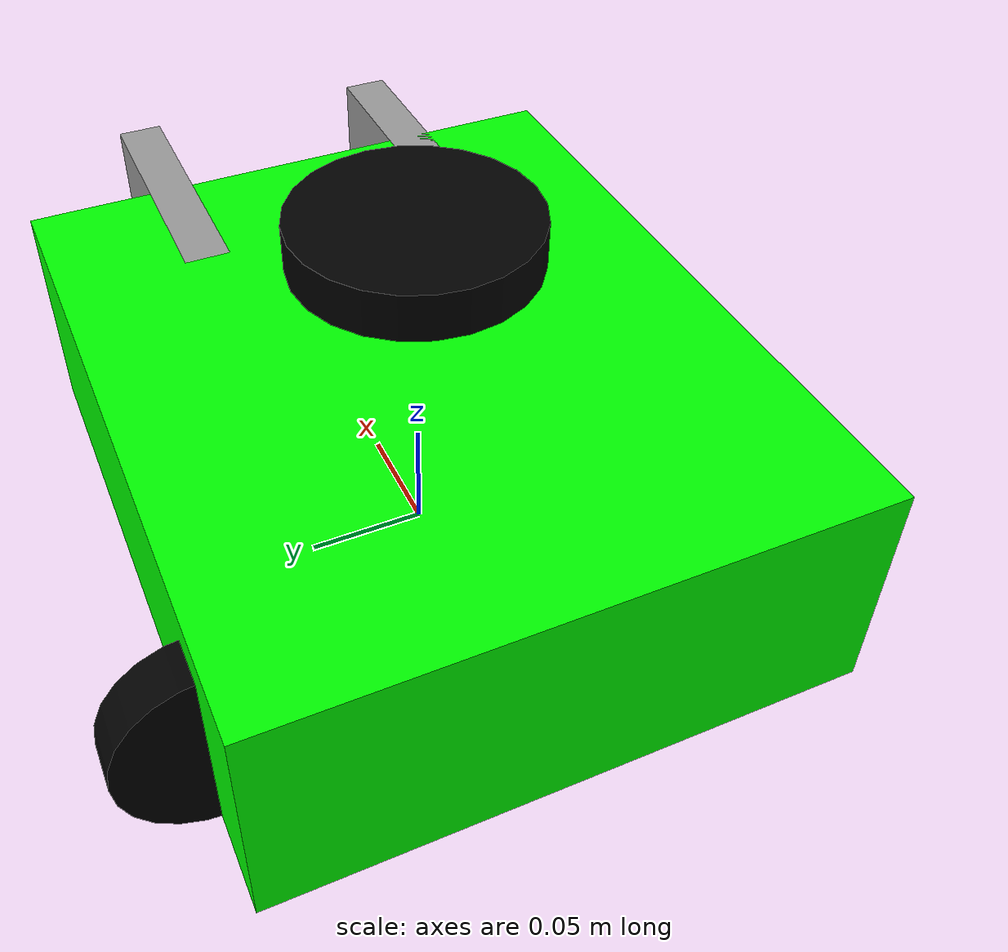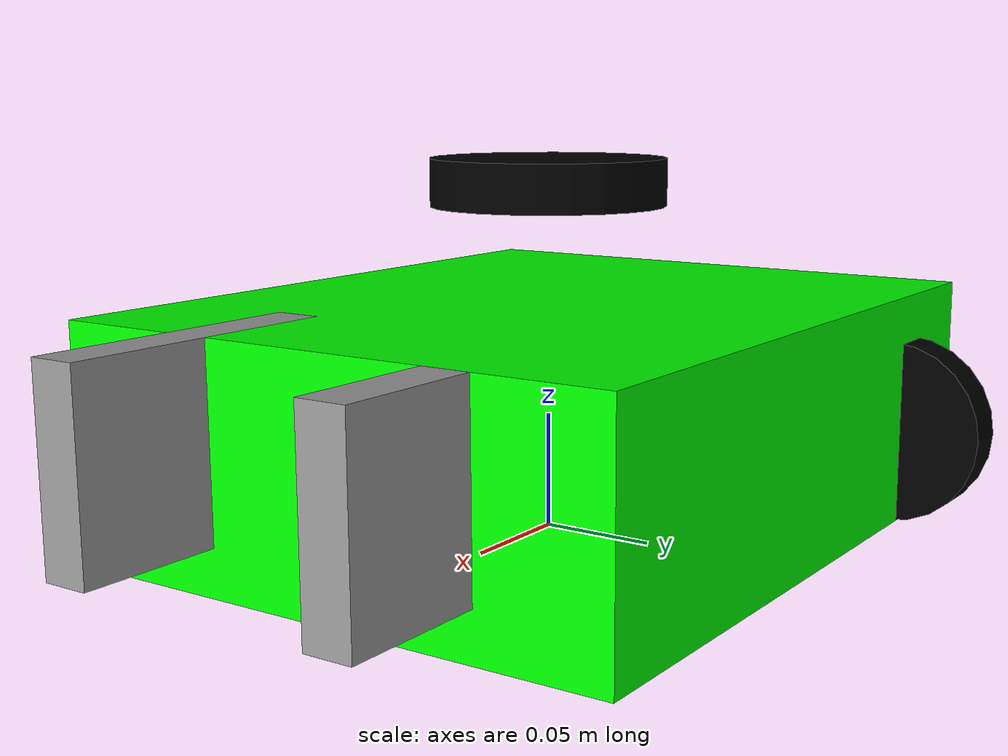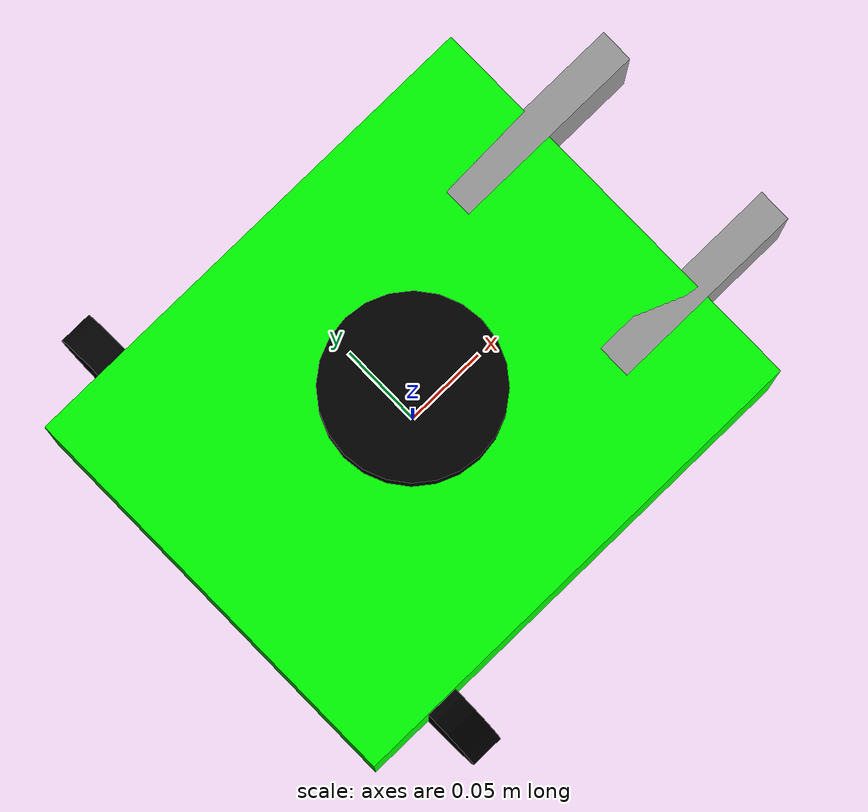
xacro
<?xml version="1.0"?>
<robot name="ball_bot" xmlns:xacro="http://www.ros.org/wiki/xacro">

  <!-- PARAMETERS -->
  <xacro:property name="base_length" value="0.30"/>
  <xacro:property name="base_width"  value="0.25"/>
  <xacro:property name="base_height" value="0.10"/>

  <xacro:property name="wheel_radius" value="0.04"/>
  <xacro:property name="wheel_width"  value="0.02"/>

  <xacro:property name="caster_radius" value="0.025"/>

  <xacro:property name="finger_length" value="0.12"/>
  <xacro:property name="finger_width"  value="0.02"/>
  <xacro:property name="finger_height" value="0.08"/>

  <xacro:property name="lidar_radius" value="0.05"/>
  <xacro:property name="lidar_height" value="0.02"/>

  <!-- Colors -->
  <material name="green"><color rgba="0 1 0 1"/></material>
  <material name="black"><color rgba="0 0 0 1"/></material>
  <material name="grey"><color rgba="0.6 0.6 0.6 1"/></material>

  <!-- BASE LINK -->
  <link name="base_link">
    <visual>
      <origin xyz="0 0 ${base_height/2}"/>
      <geometry>
        <box size="${base_length} ${base_width} ${base_height}"/>
      </geometry>
      <material name="green"/>
    </visual>

    <collision>
      <origin xyz="0 0 ${base_height/2}"/>
      <geometry>
        <box size="${base_length} ${base_width} ${base_height}"/>
      </geometry>
    </collision>

    <inertial>
      <mass value="1.0"/>
      <origin xyz="0 0 ${base_height/2}"/>
      <inertia ixx="0.02" ixy="0" ixz="0"
               iyy="0.02" iyz="0" izz="0.02"/>
    </inertial>
  </link>

  <!-- WHEEL MACRO -->
  <xacro:macro name="wheel" params="name x y">
    <link name="${name}">
      <visual>
        <origin rpy="0 1.5708 0"/>
        <geometry>
          <cylinder radius="${wheel_radius}" length="${wheel_width}"/>
        </geometry>
        <material name="black"/>
      </visual>

      <collision>
        <origin rpy="0 1.5708 0"/>
        <geometry>
          <cylinder radius="${wheel_radius}" length="${wheel_width}"/>
        </geometry>
      </collision>

      <inertial>
        <mass value="0.1"/>
        <origin xyz="0 0 0"/>
        <inertia ixx="0.0001" ixy="0" ixz="0"
                 iyy="0.0001" iyz="0" izz="0.0001"/>
      </inertial>
    </link>

    <joint name="${name}_joint" type="continuous">
      <parent link="base_link"/>
      <child link="${name}"/>
      <origin xyz="${x} ${y} ${wheel_radius}"/>
      <axis xyz="0 1 0"/>
    </joint>
  </xacro:macro>

  <!-- Rear wheels -->
  <xacro:wheel name="rear_left_wheel"  x="-0.10" y="0.12"/>
  <xacro:wheel name="rear_right_wheel" x="-0.10" y="-0.12"/>

  <!-- CENTER CASTER WHEEL (ball-like support) -->
  <link name="caster_wheel">
    <visual>
      <geometry><sphere radius="${caster_radius}"/></geometry>
      <material name="grey"/>
    </visual>
    <collision>
      <geometry><sphere radius="${caster_radius}"/></geometry>
    </collision>
    <inertial>
      <mass value="0.05"/>
      <origin xyz="0 0 0"/>
      <inertia ixx="0.00001" ixy="0" ixz="0"
               iyy="0.00001" iyz="0" izz="0.00001"/>
    </inertial>
  </link>

  <joint name="caster_joint" type="fixed">
    <parent link="base_link"/>
    <child link="caster_wheel"/>
    <origin xyz="0.10 0 ${caster_radius}"/>
  </joint>

  <!-- LEFT + RIGHT GRIPPER FINGERS -->
  <link name="left_finger">
    <visual>
      <geometry>
        <box size="${finger_length} ${finger_width} ${finger_height}"/>
      </geometry>
      <material name="grey"/>
    </visual>
  </link>

  <link name="right_finger">
    <visual>
      <geometry>
        <box size="${finger_length} ${finger_width} ${finger_height}"/>
      </geometry>
      <material name="grey"/>
    </visual>
  </link>

  <!-- Joints for the gripper fingers -->
  <joint name="left_finger_joint" type="revolute">
    <parent link="base_link"/>
    <child link="left_finger"/>
    <origin xyz="0.15 0.06 0.06"/>
    <axis xyz="0 0 1"/>
    <limit lower="-0.5" upper="0.5" effort="10" velocity="1.0"/>
  </joint>

  <joint name="right_finger_joint" type="revolute">
    <parent link="base_link"/>
    <child link="right_finger"/>
    <origin xyz="0.15 -0.06 0.06"/>
    <axis xyz="0 0 -1"/>
    <limit lower="-0.5" upper="0.5" effort="10" velocity="1.0"/>
  </joint>

  <!-- LIDAR -->
  <link name="lidar_link">
    <visual>
      <origin xyz="0 0 0"/>
      <geometry>
        <cylinder radius="${lidar_radius}" length="${lidar_height}"/>
      </geometry>
      <material name="black"/>
    </visual>
  </link>

  <joint name="lidar_joint" type="fixed">
    <parent link="base_link"/>
    <child link="lidar_link"/>
    <origin xyz="0 0 0.15"/>
  </joint>

</robot>
